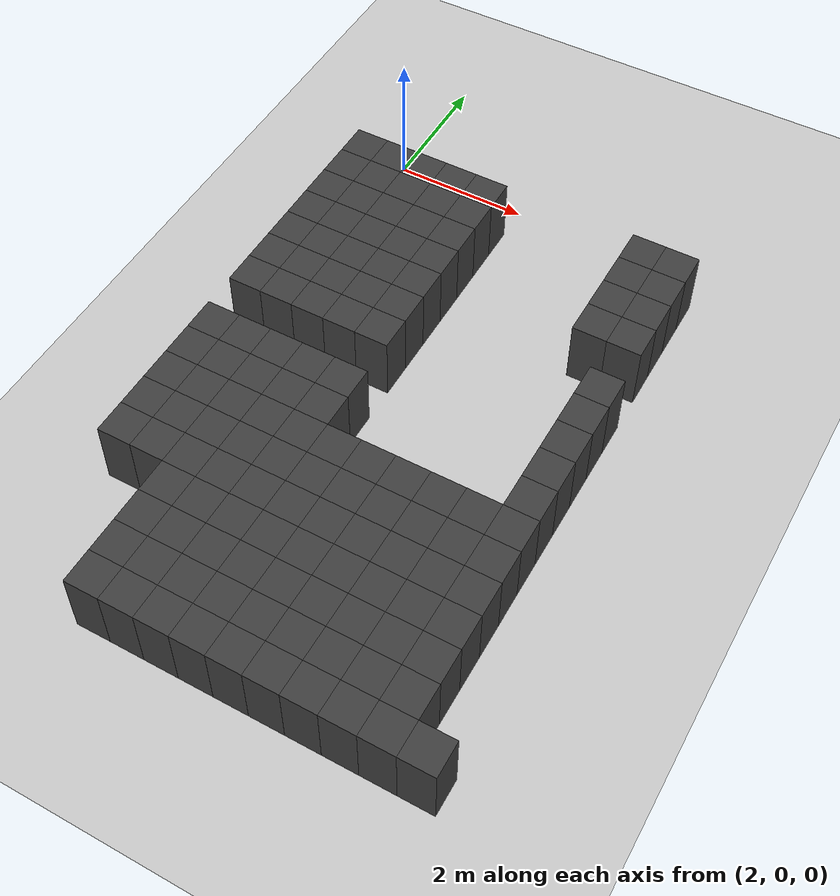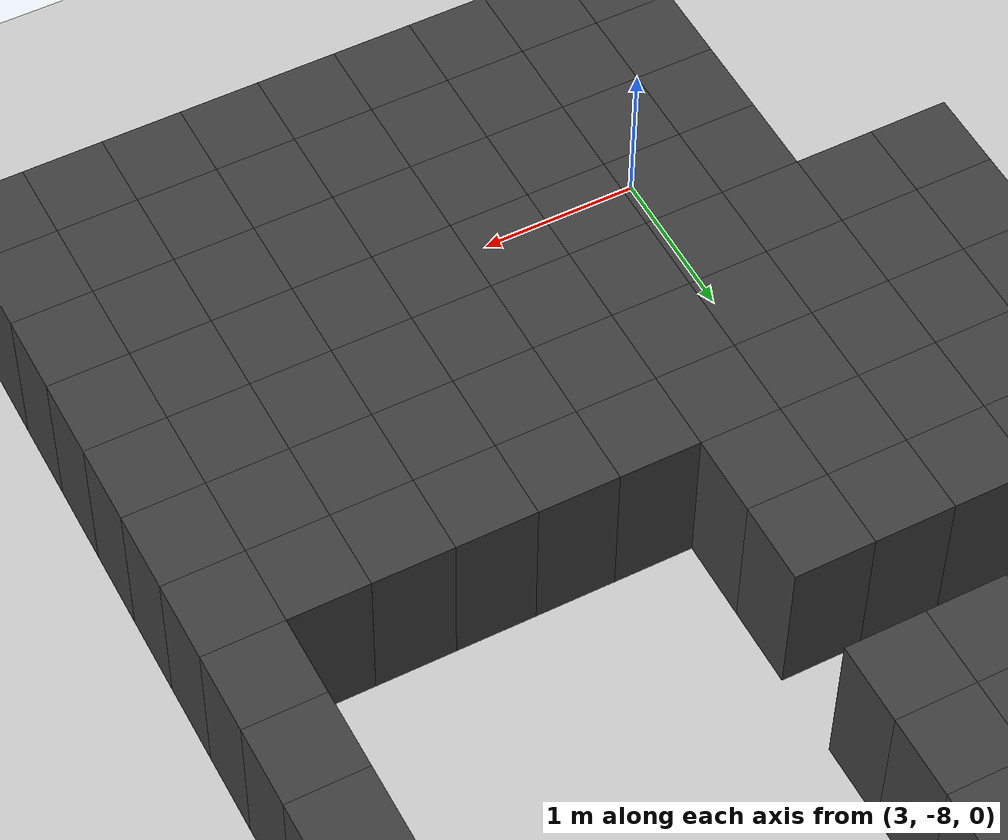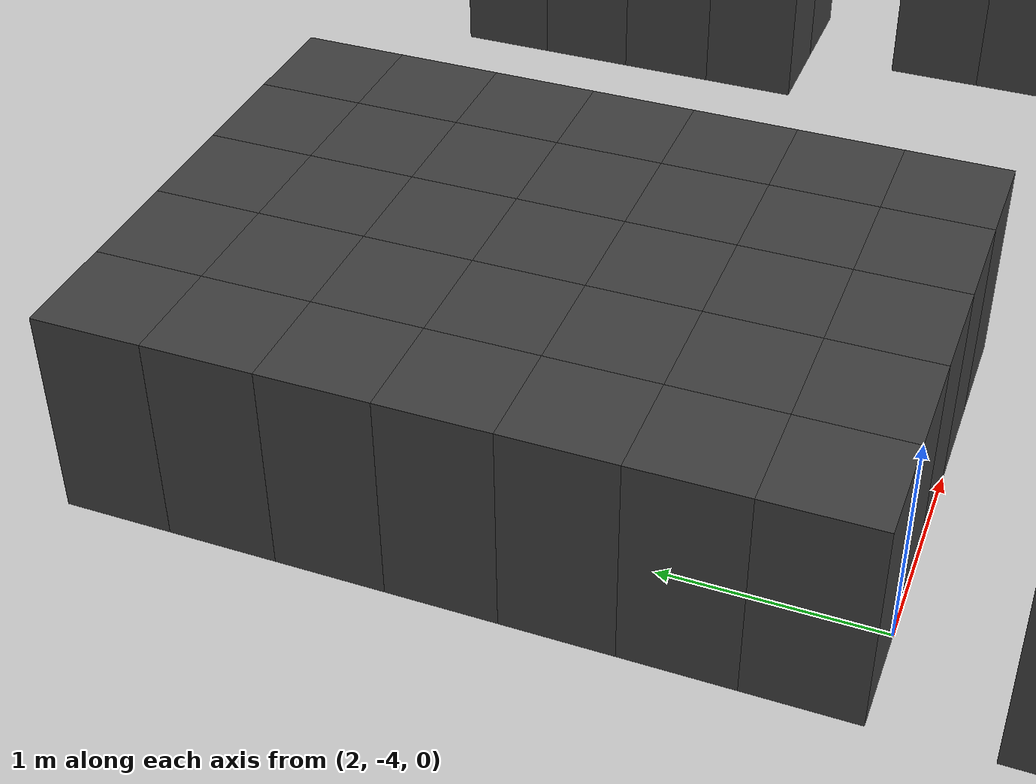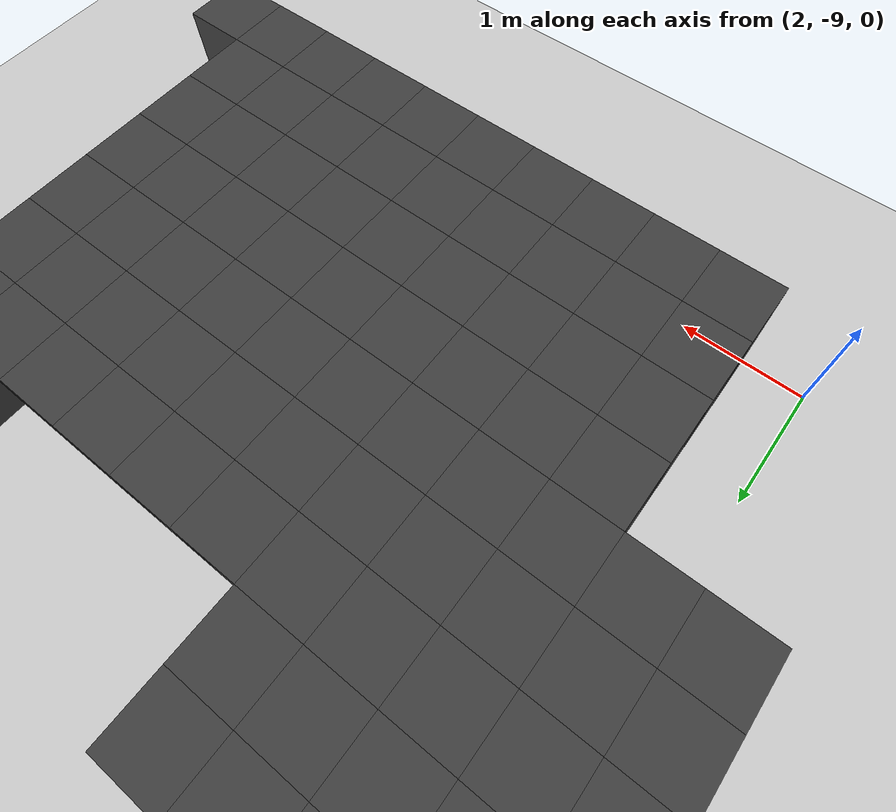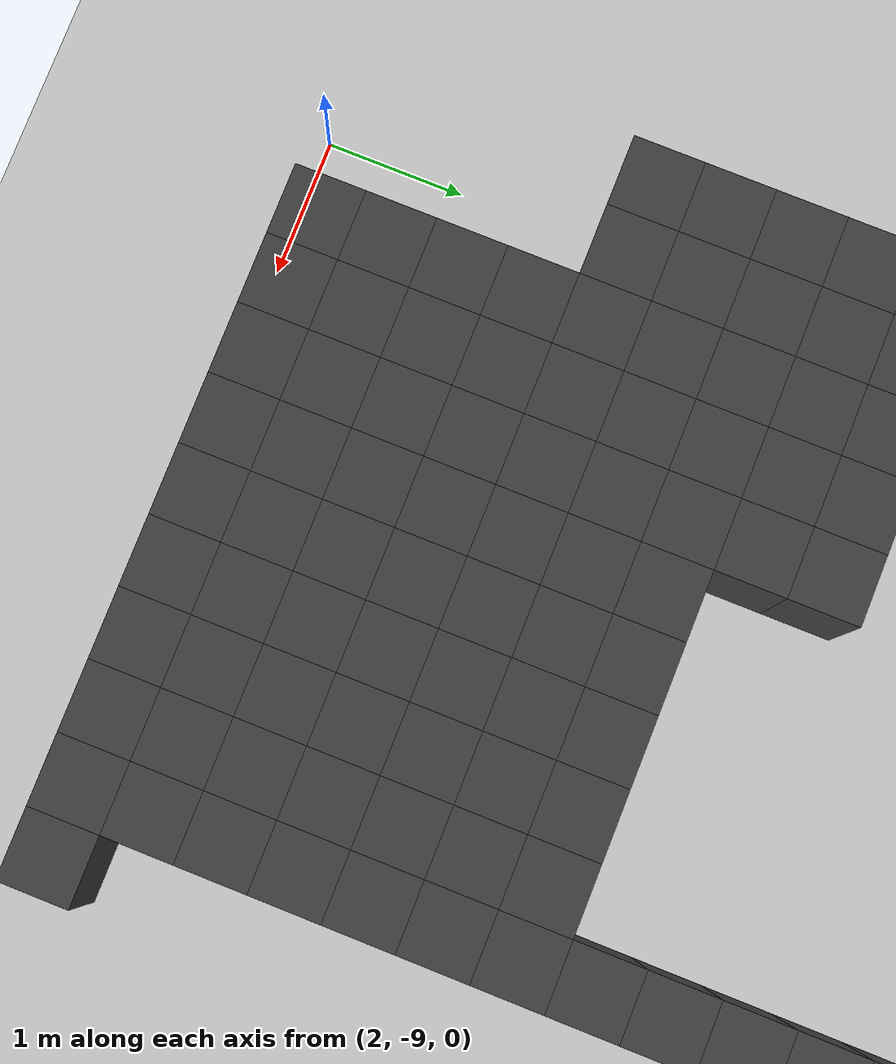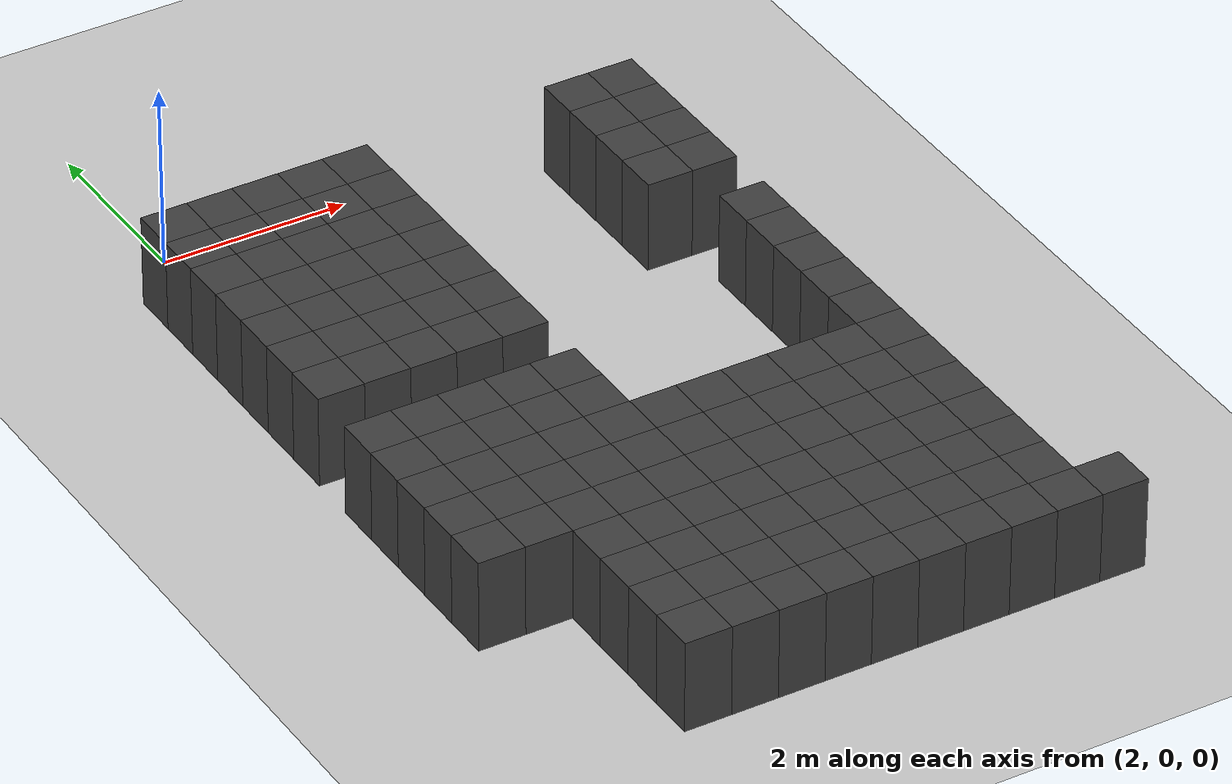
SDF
<sdf version="1.7">
 <world name="map_14494">
  <model name="ground_plane">
   <static>true</static>
   <link name="link">
    <collision name="collision">
     <geometry><plane><normal>0 0 1</normal><size>200 200</size></plane></geometry>
    </collision>
    <visual name="visual">
     <geometry><plane><normal>0 0 1</normal><size>200 200</size></plane></geometry>
     <material><ambient>0.8 0.8 0.8 1</ambient><diffuse>0.8 0.8 0.8 1</diffuse></material>
    </visual>
   </link>
  </model>
  <model name="maze_environment">
   <static>true</static>
   <link name="wall_971">
    <pose>1.750 -0.750 0.500 0 0 0</pose>
    <collision name="col"><geometry><box><size>0.5 0.5 1.0</size></box></geometry></collision>
    <visual name="vis">
     <geometry><box><size>0.5 0.5 1.0</size></box></geometry>
     <material><ambient>0.15 0.15 0.15 1</ambient><diffuse>0.25 0.25 0.25 1</diffuse></material>
    </visual>
   </link>
   <link name="wall_972">
    <pose>2.250 -0.750 0.500 0 0 0</pose>
    <collision name="col"><geometry><box><size>0.5 0.5 1.0</size></box></geometry></collision>
    <visual name="vis">
     <geometry><box><size>0.5 0.5 1.0</size></box></geometry>
     <material><ambient>0.15 0.15 0.15 1</ambient><diffuse>0.25 0.25 0.25 1</diffuse></material>
    </visual>
   </link>
   <link name="wall_973">
    <pose>2.750 -0.750 0.500 0 0 0</pose>
    <collision name="col"><geometry><box><size>0.5 0.5 1.0</size></box></geometry></collision>
    <visual name="vis">
     <geometry><box><size>0.5 0.5 1.0</size></box></geometry>
     <material><ambient>0.15 0.15 0.15 1</ambient><diffuse>0.25 0.25 0.25 1</diffuse></material>
    </visual>
   </link>
   <link name="wall_974">
    <pose>3.250 -0.750 0.500 0 0 0</pose>
    <collision name="col"><geometry><box><size>0.5 0.5 1.0</size></box></geometry></collision>
    <visual name="vis">
     <geometry><box><size>0.5 0.5 1.0</size></box></geometry>
     <material><ambient>0.15 0.15 0.15 1</ambient><diffuse>0.25 0.25 0.25 1</diffuse></material>
    </visual>
   </link>
   <link name="wall_975">
    <pose>3.750 -0.750 0.500 0 0 0</pose>
    <collision name="col"><geometry><box><size>0.5 0.5 1.0</size></box></geometry></collision>
    <visual name="vis">
     <geometry><box><size>0.5 0.5 1.0</size></box></geometry>
     <material><ambient>0.15 0.15 0.15 1</ambient><diffuse>0.25 0.25 0.25 1</diffuse></material>
    </visual>
   </link>
   <link name="wall_976">
    <pose>6.250 -0.750 0.500 0 0 0</pose>
    <collision name="col"><geometry><box><size>0.5 0.5 1.0</size></box></geometry></collision>
    <visual name="vis">
     <geometry><box><size>0.5 0.5 1.0</size></box></geometry>
     <material><ambient>0.15 0.15 0.15 1</ambient><diffuse>0.25 0.25 0.25 1</diffuse></material>
    </visual>
   </link>
   <link name="wall_977">
    <pose>6.750 -0.750 0.500 0 0 0</pose>
    <collision name="col"><geometry><box><size>0.5 0.5 1.0</size></box></geometry></collision>
    <visual name="vis">
     <geometry><box><size>0.5 0.5 1.0</size></box></geometry>
     <material><ambient>0.15 0.15 0.15 1</ambient><diffuse>0.25 0.25 0.25 1</diffuse></material>
    </visual>
   </link>
   <link name="wall_1007">
    <pose>1.750 -1.250 0.500 0 0 0</pose>
    <collision name="col"><geometry><box><size>0.5 0.5 1.0</size></box></geometry></collision>
    <visual name="vis">
     <geometry><box><size>0.5 0.5 1.0</size></box></geometry>
     <material><ambient>0.15 0.15 0.15 1</ambient><diffuse>0.25 0.25 0.25 1</diffuse></material>
    </visual>
   </link>
   <link name="wall_1008">
    <pose>2.250 -1.250 0.500 0 0 0</pose>
    <collision name="col"><geometry><box><size>0.5 0.5 1.0</size></box></geometry></collision>
    <visual name="vis">
     <geometry><box><size>0.5 0.5 1.0</size></box></geometry>
     <material><ambient>0.15 0.15 0.15 1</ambient><diffuse>0.25 0.25 0.25 1</diffuse></material>
    </visual>
   </link>
   <link name="wall_1009">
    <pose>2.750 -1.250 0.500 0 0 0</pose>
    <collision name="col"><geometry><box><size>0.5 0.5 1.0</size></box></geometry></collision>
    <visual name="vis">
     <geometry><box><size>0.5 0.5 1.0</size></box></geometry>
     <material><ambient>0.15 0.15 0.15 1</ambient><diffuse>0.25 0.25 0.25 1</diffuse></material>
    </visual>
   </link>
   <link name="wall_1010">
    <pose>3.250 -1.250 0.500 0 0 0</pose>
    <collision name="col"><geometry><box><size>0.5 0.5 1.0</size></box></geometry></collision>
    <visual name="vis">
     <geometry><box><size>0.5 0.5 1.0</size></box></geometry>
     <material><ambient>0.15 0.15 0.15 1</ambient><diffuse>0.25 0.25 0.25 1</diffuse></material>
    </visual>
   </link>
   <link name="wall_1011">
    <pose>3.750 -1.250 0.500 0 0 0</pose>
    <collision name="col"><geometry><box><size>0.5 0.5 1.0</size></box></geometry></collision>
    <visual name="vis">
     <geometry><box><size>0.5 0.5 1.0</size></box></geometry>
     <material><ambient>0.15 0.15 0.15 1</ambient><diffuse>0.25 0.25 0.25 1</diffuse></material>
    </visual>
   </link>
   <link name="wall_1012">
    <pose>6.250 -1.250 0.500 0 0 0</pose>
    <collision name="col"><geometry><box><size>0.5 0.5 1.0</size></box></geometry></collision>
    <visual name="vis">
     <geometry><box><size>0.5 0.5 1.0</size></box></geometry>
     <material><ambient>0.15 0.15 0.15 1</ambient><diffuse>0.25 0.25 0.25 1</diffuse></material>
    </visual>
   </link>
   <link name="wall_1013">
    <pose>6.750 -1.250 0.500 0 0 0</pose>
    <collision name="col"><geometry><box><size>0.5 0.5 1.0</size></box></geometry></collision>
    <visual name="vis">
     <geometry><box><size>0.5 0.5 1.0</size></box></geometry>
     <material><ambient>0.15 0.15 0.15 1</ambient><diffuse>0.25 0.25 0.25 1</diffuse></material>
    </visual>
   </link>
   <link name="wall_1039">
    <pose>1.750 -1.750 0.500 0 0 0</pose>
    <collision name="col"><geometry><box><size>0.5 0.5 1.0</size></box></geometry></collision>
    <visual name="vis">
     <geometry><box><size>0.5 0.5 1.0</size></box></geometry>
     <material><ambient>0.15 0.15 0.15 1</ambient><diffuse>0.25 0.25 0.25 1</diffuse></material>
    </visual>
   </link>
   <link name="wall_1040">
    <pose>2.250 -1.750 0.500 0 0 0</pose>
    <collision name="col"><geometry><box><size>0.5 0.5 1.0</size></box></geometry></collision>
    <visual name="vis">
     <geometry><box><size>0.5 0.5 1.0</size></box></geometry>
     <material><ambient>0.15 0.15 0.15 1</ambient><diffuse>0.25 0.25 0.25 1</diffuse></material>
    </visual>
   </link>
   <link name="wall_1041">
    <pose>2.750 -1.750 0.500 0 0 0</pose>
    <collision name="col"><geometry><box><size>0.5 0.5 1.0</size></box></geometry></collision>
    <visual name="vis">
     <geometry><box><size>0.5 0.5 1.0</size></box></geometry>
     <material><ambient>0.15 0.15 0.15 1</ambient><diffuse>0.25 0.25 0.25 1</diffuse></material>
    </visual>
   </link>
   <link name="wall_1042">
    <pose>3.250 -1.750 0.500 0 0 0</pose>
    <collision name="col"><geometry><box><size>0.5 0.5 1.0</size></box></geometry></collision>
    <visual name="vis">
     <geometry><box><size>0.5 0.5 1.0</size></box></geometry>
     <material><ambient>0.15 0.15 0.15 1</ambient><diffuse>0.25 0.25 0.25 1</diffuse></material>
    </visual>
   </link>
   <link name="wall_1043">
    <pose>3.750 -1.750 0.500 0 0 0</pose>
    <collision name="col"><geometry><box><size>0.5 0.5 1.0</size></box></geometry></collision>
    <visual name="vis">
     <geometry><box><size>0.5 0.5 1.0</size></box></geometry>
     <material><ambient>0.15 0.15 0.15 1</ambient><diffuse>0.25 0.25 0.25 1</diffuse></material>
    </visual>
   </link>
   <link name="wall_1044">
    <pose>6.250 -1.750 0.500 0 0 0</pose>
    <collision name="col"><geometry><box><size>0.5 0.5 1.0</size></box></geometry></collision>
    <visual name="vis">
     <geometry><box><size>0.5 0.5 1.0</size></box></geometry>
     <material><ambient>0.15 0.15 0.15 1</ambient><diffuse>0.25 0.25 0.25 1</diffuse></material>
    </visual>
   </link>
   <link name="wall_1045">
    <pose>6.750 -1.750 0.500 0 0 0</pose>
    <collision name="col"><geometry><box><size>0.5 0.5 1.0</size></box></geometry></collision>
    <visual name="vis">
     <geometry><box><size>0.5 0.5 1.0</size></box></geometry>
     <material><ambient>0.15 0.15 0.15 1</ambient><diffuse>0.25 0.25 0.25 1</diffuse></material>
    </visual>
   </link>
   <link name="wall_1071">
    <pose>1.750 -2.250 0.500 0 0 0</pose>
    <collision name="col"><geometry><box><size>0.5 0.5 1.0</size></box></geometry></collision>
    <visual name="vis">
     <geometry><box><size>0.5 0.5 1.0</size></box></geometry>
     <material><ambient>0.15 0.15 0.15 1</ambient><diffuse>0.25 0.25 0.25 1</diffuse></material>
    </visual>
   </link>
   <link name="wall_1072">
    <pose>2.250 -2.250 0.500 0 0 0</pose>
    <collision name="col"><geometry><box><size>0.5 0.5 1.0</size></box></geometry></collision>
    <visual name="vis">
     <geometry><box><size>0.5 0.5 1.0</size></box></geometry>
     <material><ambient>0.15 0.15 0.15 1</ambient><diffuse>0.25 0.25 0.25 1</diffuse></material>
    </visual>
   </link>
   <link name="wall_1073">
    <pose>2.750 -2.250 0.500 0 0 0</pose>
    <collision name="col"><geometry><box><size>0.5 0.5 1.0</size></box></geometry></collision>
    <visual name="vis">
     <geometry><box><size>0.5 0.5 1.0</size></box></geometry>
     <material><ambient>0.15 0.15 0.15 1</ambient><diffuse>0.25 0.25 0.25 1</diffuse></material>
    </visual>
   </link>
   <link name="wall_1074">
    <pose>3.250 -2.250 0.500 0 0 0</pose>
    <collision name="col"><geometry><box><size>0.5 0.5 1.0</size></box></geometry></collision>
    <visual name="vis">
     <geometry><box><size>0.5 0.5 1.0</size></box></geometry>
     <material><ambient>0.15 0.15 0.15 1</ambient><diffuse>0.25 0.25 0.25 1</diffuse></material>
    </visual>
   </link>
   <link name="wall_1075">
    <pose>3.750 -2.250 0.500 0 0 0</pose>
    <collision name="col"><geometry><box><size>0.5 0.5 1.0</size></box></geometry></collision>
    <visual name="vis">
     <geometry><box><size>0.5 0.5 1.0</size></box></geometry>
     <material><ambient>0.15 0.15 0.15 1</ambient><diffuse>0.25 0.25 0.25 1</diffuse></material>
    </visual>
   </link>
   <link name="wall_1076">
    <pose>6.250 -2.250 0.500 0 0 0</pose>
    <collision name="col"><geometry><box><size>0.5 0.5 1.0</size></box></geometry></collision>
    <visual name="vis">
     <geometry><box><size>0.5 0.5 1.0</size></box></geometry>
     <material><ambient>0.15 0.15 0.15 1</ambient><diffuse>0.25 0.25 0.25 1</diffuse></material>
    </visual>
   </link>
   <link name="wall_1077">
    <pose>6.750 -2.250 0.500 0 0 0</pose>
    <collision name="col"><geometry><box><size>0.5 0.5 1.0</size></box></geometry></collision>
    <visual name="vis">
     <geometry><box><size>0.5 0.5 1.0</size></box></geometry>
     <material><ambient>0.15 0.15 0.15 1</ambient><diffuse>0.25 0.25 0.25 1</diffuse></material>
    </visual>
   </link>
   <link name="wall_1099">
    <pose>1.750 -2.750 0.500 0 0 0</pose>
    <collision name="col"><geometry><box><size>0.5 0.5 1.0</size></box></geometry></collision>
    <visual name="vis">
     <geometry><box><size>0.5 0.5 1.0</size></box></geometry>
     <material><ambient>0.15 0.15 0.15 1</ambient><diffuse>0.25 0.25 0.25 1</diffuse></material>
    </visual>
   </link>
   <link name="wall_1100">
    <pose>2.250 -2.750 0.500 0 0 0</pose>
    <collision name="col"><geometry><box><size>0.5 0.5 1.0</size></box></geometry></collision>
    <visual name="vis">
     <geometry><box><size>0.5 0.5 1.0</size></box></geometry>
     <material><ambient>0.15 0.15 0.15 1</ambient><diffuse>0.25 0.25 0.25 1</diffuse></material>
    </visual>
   </link>
   <link name="wall_1101">
    <pose>2.750 -2.750 0.500 0 0 0</pose>
    <collision name="col"><geometry><box><size>0.5 0.5 1.0</size></box></geometry></collision>
    <visual name="vis">
     <geometry><box><size>0.5 0.5 1.0</size></box></geometry>
     <material><ambient>0.15 0.15 0.15 1</ambient><diffuse>0.25 0.25 0.25 1</diffuse></material>
    </visual>
   </link>
   <link name="wall_1102">
    <pose>3.250 -2.750 0.500 0 0 0</pose>
    <collision name="col"><geometry><box><size>0.5 0.5 1.0</size></box></geometry></collision>
    <visual name="vis">
     <geometry><box><size>0.5 0.5 1.0</size></box></geometry>
     <material><ambient>0.15 0.15 0.15 1</ambient><diffuse>0.25 0.25 0.25 1</diffuse></material>
    </visual>
   </link>
   <link name="wall_1103">
    <pose>3.750 -2.750 0.500 0 0 0</pose>
    <collision name="col"><geometry><box><size>0.5 0.5 1.0</size></box></geometry></collision>
    <visual name="vis">
     <geometry><box><size>0.5 0.5 1.0</size></box></geometry>
     <material><ambient>0.15 0.15 0.15 1</ambient><diffuse>0.25 0.25 0.25 1</diffuse></material>
    </visual>
   </link>
   <link name="wall_1125">
    <pose>1.750 -3.250 0.500 0 0 0</pose>
    <collision name="col"><geometry><box><size>0.5 0.5 1.0</size></box></geometry></collision>
    <visual name="vis">
     <geometry><box><size>0.5 0.5 1.0</size></box></geometry>
     <material><ambient>0.15 0.15 0.15 1</ambient><diffuse>0.25 0.25 0.25 1</diffuse></material>
    </visual>
   </link>
   <link name="wall_1126">
    <pose>2.250 -3.250 0.500 0 0 0</pose>
    <collision name="col"><geometry><box><size>0.5 0.5 1.0</size></box></geometry></collision>
    <visual name="vis">
     <geometry><box><size>0.5 0.5 1.0</size></box></geometry>
     <material><ambient>0.15 0.15 0.15 1</ambient><diffuse>0.25 0.25 0.25 1</diffuse></material>
    </visual>
   </link>
   <link name="wall_1127">
    <pose>2.750 -3.250 0.500 0 0 0</pose>
    <collision name="col"><geometry><box><size>0.5 0.5 1.0</size></box></geometry></collision>
    <visual name="vis">
     <geometry><box><size>0.5 0.5 1.0</size></box></geometry>
     <material><ambient>0.15 0.15 0.15 1</ambient><diffuse>0.25 0.25 0.25 1</diffuse></material>
    </visual>
   </link>
   <link name="wall_1128">
    <pose>3.250 -3.250 0.500 0 0 0</pose>
    <collision name="col"><geometry><box><size>0.5 0.5 1.0</size></box></geometry></collision>
    <visual name="vis">
     <geometry><box><size>0.5 0.5 1.0</size></box></geometry>
     <material><ambient>0.15 0.15 0.15 1</ambient><diffuse>0.25 0.25 0.25 1</diffuse></material>
    </visual>
   </link>
   <link name="wall_1129">
    <pose>3.750 -3.250 0.500 0 0 0</pose>
    <collision name="col"><geometry><box><size>0.5 0.5 1.0</size></box></geometry></collision>
    <visual name="vis">
     <geometry><box><size>0.5 0.5 1.0</size></box></geometry>
     <material><ambient>0.15 0.15 0.15 1</ambient><diffuse>0.25 0.25 0.25 1</diffuse></material>
    </visual>
   </link>
   <link name="wall_1130">
    <pose>6.750 -3.250 0.500 0 0 0</pose>
    <collision name="col"><geometry><box><size>0.5 0.5 1.0</size></box></geometry></collision>
    <visual name="vis">
     <geometry><box><size>0.5 0.5 1.0</size></box></geometry>
     <material><ambient>0.15 0.15 0.15 1</ambient><diffuse>0.25 0.25 0.25 1</diffuse></material>
    </visual>
   </link>
   <link name="wall_1152">
    <pose>1.750 -3.750 0.500 0 0 0</pose>
    <collision name="col"><geometry><box><size>0.5 0.5 1.0</size></box></geometry></collision>
    <visual name="vis">
     <geometry><box><size>0.5 0.5 1.0</size></box></geometry>
     <material><ambient>0.15 0.15 0.15 1</ambient><diffuse>0.25 0.25 0.25 1</diffuse></material>
    </visual>
   </link>
   <link name="wall_1153">
    <pose>2.250 -3.750 0.500 0 0 0</pose>
    <collision name="col"><geometry><box><size>0.5 0.5 1.0</size></box></geometry></collision>
    <visual name="vis">
     <geometry><box><size>0.5 0.5 1.0</size></box></geometry>
     <material><ambient>0.15 0.15 0.15 1</ambient><diffuse>0.25 0.25 0.25 1</diffuse></material>
    </visual>
   </link>
   <link name="wall_1154">
    <pose>2.750 -3.750 0.500 0 0 0</pose>
    <collision name="col"><geometry><box><size>0.5 0.5 1.0</size></box></geometry></collision>
    <visual name="vis">
     <geometry><box><size>0.5 0.5 1.0</size></box></geometry>
     <material><ambient>0.15 0.15 0.15 1</ambient><diffuse>0.25 0.25 0.25 1</diffuse></material>
    </visual>
   </link>
   <link name="wall_1155">
    <pose>3.250 -3.750 0.500 0 0 0</pose>
    <collision name="col"><geometry><box><size>0.5 0.5 1.0</size></box></geometry></collision>
    <visual name="vis">
     <geometry><box><size>0.5 0.5 1.0</size></box></geometry>
     <material><ambient>0.15 0.15 0.15 1</ambient><diffuse>0.25 0.25 0.25 1</diffuse></material>
    </visual>
   </link>
   <link name="wall_1156">
    <pose>3.750 -3.750 0.500 0 0 0</pose>
    <collision name="col"><geometry><box><size>0.5 0.5 1.0</size></box></geometry></collision>
    <visual name="vis">
     <geometry><box><size>0.5 0.5 1.0</size></box></geometry>
     <material><ambient>0.15 0.15 0.15 1</ambient><diffuse>0.25 0.25 0.25 1</diffuse></material>
    </visual>
   </link>
   <link name="wall_1157">
    <pose>6.750 -3.750 0.500 0 0 0</pose>
    <collision name="col"><geometry><box><size>0.5 0.5 1.0</size></box></geometry></collision>
    <visual name="vis">
     <geometry><box><size>0.5 0.5 1.0</size></box></geometry>
     <material><ambient>0.15 0.15 0.15 1</ambient><diffuse>0.25 0.25 0.25 1</diffuse></material>
    </visual>
   </link>
   <link name="wall_1177">
    <pose>6.750 -4.250 0.500 0 0 0</pose>
    <collision name="col"><geometry><box><size>0.5 0.5 1.0</size></box></geometry></collision>
    <visual name="vis">
     <geometry><box><size>0.5 0.5 1.0</size></box></geometry>
     <material><ambient>0.15 0.15 0.15 1</ambient><diffuse>0.25 0.25 0.25 1</diffuse></material>
    </visual>
   </link>
   <link name="wall_1209">
    <pose>1.750 -4.750 0.500 0 0 0</pose>
    <collision name="col"><geometry><box><size>0.5 0.5 1.0</size></box></geometry></collision>
    <visual name="vis">
     <geometry><box><size>0.5 0.5 1.0</size></box></geometry>
     <material><ambient>0.15 0.15 0.15 1</ambient><diffuse>0.25 0.25 0.25 1</diffuse></material>
    </visual>
   </link>
   <link name="wall_1210">
    <pose>2.250 -4.750 0.500 0 0 0</pose>
    <collision name="col"><geometry><box><size>0.5 0.5 1.0</size></box></geometry></collision>
    <visual name="vis">
     <geometry><box><size>0.5 0.5 1.0</size></box></geometry>
     <material><ambient>0.15 0.15 0.15 1</ambient><diffuse>0.25 0.25 0.25 1</diffuse></material>
    </visual>
   </link>
   <link name="wall_1211">
    <pose>2.750 -4.750 0.500 0 0 0</pose>
    <collision name="col"><geometry><box><size>0.5 0.5 1.0</size></box></geometry></collision>
    <visual name="vis">
     <geometry><box><size>0.5 0.5 1.0</size></box></geometry>
     <material><ambient>0.15 0.15 0.15 1</ambient><diffuse>0.25 0.25 0.25 1</diffuse></material>
    </visual>
   </link>
   <link name="wall_1212">
    <pose>3.250 -4.750 0.500 0 0 0</pose>
    <collision name="col"><geometry><box><size>0.5 0.5 1.0</size></box></geometry></collision>
    <visual name="vis">
     <geometry><box><size>0.5 0.5 1.0</size></box></geometry>
     <material><ambient>0.15 0.15 0.15 1</ambient><diffuse>0.25 0.25 0.25 1</diffuse></material>
    </visual>
   </link>
   <link name="wall_1213">
    <pose>3.750 -4.750 0.500 0 0 0</pose>
    <collision name="col"><geometry><box><size>0.5 0.5 1.0</size></box></geometry></collision>
    <visual name="vis">
     <geometry><box><size>0.5 0.5 1.0</size></box></geometry>
     <material><ambient>0.15 0.15 0.15 1</ambient><diffuse>0.25 0.25 0.25 1</diffuse></material>
    </visual>
   </link>
   <link name="wall_1214">
    <pose>6.750 -4.750 0.500 0 0 0</pose>
    <collision name="col"><geometry><box><size>0.5 0.5 1.0</size></box></geometry></collision>
    <visual name="vis">
     <geometry><box><size>0.5 0.5 1.0</size></box></geometry>
     <material><ambient>0.15 0.15 0.15 1</ambient><diffuse>0.25 0.25 0.25 1</diffuse></material>
    </visual>
   </link>
   <link name="wall_1246">
    <pose>1.750 -5.250 0.500 0 0 0</pose>
    <collision name="col"><geometry><box><size>0.5 0.5 1.0</size></box></geometry></collision>
    <visual name="vis">
     <geometry><box><size>0.5 0.5 1.0</size></box></geometry>
     <material><ambient>0.15 0.15 0.15 1</ambient><diffuse>0.25 0.25 0.25 1</diffuse></material>
    </visual>
   </link>
   <link name="wall_1247">
    <pose>2.250 -5.250 0.500 0 0 0</pose>
    <collision name="col"><geometry><box><size>0.5 0.5 1.0</size></box></geometry></collision>
    <visual name="vis">
     <geometry><box><size>0.5 0.5 1.0</size></box></geometry>
     <material><ambient>0.15 0.15 0.15 1</ambient><diffuse>0.25 0.25 0.25 1</diffuse></material>
    </visual>
   </link>
   <link name="wall_1248">
    <pose>2.750 -5.250 0.500 0 0 0</pose>
    <collision name="col"><geometry><box><size>0.5 0.5 1.0</size></box></geometry></collision>
    <visual name="vis">
     <geometry><box><size>0.5 0.5 1.0</size></box></geometry>
     <material><ambient>0.15 0.15 0.15 1</ambient><diffuse>0.25 0.25 0.25 1</diffuse></material>
    </visual>
   </link>
   <link name="wall_1249">
    <pose>3.250 -5.250 0.500 0 0 0</pose>
    <collision name="col"><geometry><box><size>0.5 0.5 1.0</size></box></geometry></collision>
    <visual name="vis">
     <geometry><box><size>0.5 0.5 1.0</size></box></geometry>
     <material><ambient>0.15 0.15 0.15 1</ambient><diffuse>0.25 0.25 0.25 1</diffuse></material>
    </visual>
   </link>
   <link name="wall_1250">
    <pose>3.750 -5.250 0.500 0 0 0</pose>
    <collision name="col"><geometry><box><size>0.5 0.5 1.0</size></box></geometry></collision>
    <visual name="vis">
     <geometry><box><size>0.5 0.5 1.0</size></box></geometry>
     <material><ambient>0.15 0.15 0.15 1</ambient><diffuse>0.25 0.25 0.25 1</diffuse></material>
    </visual>
   </link>
   <link name="wall_1251">
    <pose>6.750 -5.250 0.500 0 0 0</pose>
    <collision name="col"><geometry><box><size>0.5 0.5 1.0</size></box></geometry></collision>
    <visual name="vis">
     <geometry><box><size>0.5 0.5 1.0</size></box></geometry>
     <material><ambient>0.15 0.15 0.15 1</ambient><diffuse>0.25 0.25 0.25 1</diffuse></material>
    </visual>
   </link>
   <link name="wall_1288">
    <pose>1.750 -5.750 0.500 0 0 0</pose>
    <collision name="col"><geometry><box><size>0.5 0.5 1.0</size></box></geometry></collision>
    <visual name="vis">
     <geometry><box><size>0.5 0.5 1.0</size></box></geometry>
     <material><ambient>0.15 0.15 0.15 1</ambient><diffuse>0.25 0.25 0.25 1</diffuse></material>
    </visual>
   </link>
   <link name="wall_1289">
    <pose>2.250 -5.750 0.500 0 0 0</pose>
    <collision name="col"><geometry><box><size>0.5 0.5 1.0</size></box></geometry></collision>
    <visual name="vis">
     <geometry><box><size>0.5 0.5 1.0</size></box></geometry>
     <material><ambient>0.15 0.15 0.15 1</ambient><diffuse>0.25 0.25 0.25 1</diffuse></material>
    </visual>
   </link>
   <link name="wall_1290">
    <pose>2.750 -5.750 0.500 0 0 0</pose>
    <collision name="col"><geometry><box><size>0.5 0.5 1.0</size></box></geometry></collision>
    <visual name="vis">
     <geometry><box><size>0.5 0.5 1.0</size></box></geometry>
     <material><ambient>0.15 0.15 0.15 1</ambient><diffuse>0.25 0.25 0.25 1</diffuse></material>
    </visual>
   </link>
   <link name="wall_1291">
    <pose>3.250 -5.750 0.500 0 0 0</pose>
    <collision name="col"><geometry><box><size>0.5 0.5 1.0</size></box></geometry></collision>
    <visual name="vis">
     <geometry><box><size>0.5 0.5 1.0</size></box></geometry>
     <material><ambient>0.15 0.15 0.15 1</ambient><diffuse>0.25 0.25 0.25 1</diffuse></material>
    </visual>
   </link>
   <link name="wall_1292">
    <pose>3.750 -5.750 0.500 0 0 0</pose>
    <collision name="col"><geometry><box><size>0.5 0.5 1.0</size></box></geometry></collision>
    <visual name="vis">
     <geometry><box><size>0.5 0.5 1.0</size></box></geometry>
     <material><ambient>0.15 0.15 0.15 1</ambient><diffuse>0.25 0.25 0.25 1</diffuse></material>
    </visual>
   </link>
   <link name="wall_1293">
    <pose>4.250 -5.750 0.500 0 0 0</pose>
    <collision name="col"><geometry><box><size>0.5 0.5 1.0</size></box></geometry></collision>
    <visual name="vis">
     <geometry><box><size>0.5 0.5 1.0</size></box></geometry>
     <material><ambient>0.15 0.15 0.15 1</ambient><diffuse>0.25 0.25 0.25 1</diffuse></material>
    </visual>
   </link>
   <link name="wall_1294">
    <pose>4.750 -5.750 0.500 0 0 0</pose>
    <collision name="col"><geometry><box><size>0.5 0.5 1.0</size></box></geometry></collision>
    <visual name="vis">
     <geometry><box><size>0.5 0.5 1.0</size></box></geometry>
     <material><ambient>0.15 0.15 0.15 1</ambient><diffuse>0.25 0.25 0.25 1</diffuse></material>
    </visual>
   </link>
   <link name="wall_1295">
    <pose>5.250 -5.750 0.500 0 0 0</pose>
    <collision name="col"><geometry><box><size>0.5 0.5 1.0</size></box></geometry></collision>
    <visual name="vis">
     <geometry><box><size>0.5 0.5 1.0</size></box></geometry>
     <material><ambient>0.15 0.15 0.15 1</ambient><diffuse>0.25 0.25 0.25 1</diffuse></material>
    </visual>
   </link>
   <link name="wall_1296">
    <pose>5.750 -5.750 0.500 0 0 0</pose>
    <collision name="col"><geometry><box><size>0.5 0.5 1.0</size></box></geometry></collision>
    <visual name="vis">
     <geometry><box><size>0.5 0.5 1.0</size></box></geometry>
     <material><ambient>0.15 0.15 0.15 1</ambient><diffuse>0.25 0.25 0.25 1</diffuse></material>
    </visual>
   </link>
   <link name="wall_1297">
    <pose>6.250 -5.750 0.500 0 0 0</pose>
    <collision name="col"><geometry><box><size>0.5 0.5 1.0</size></box></geometry></collision>
    <visual name="vis">
     <geometry><box><size>0.5 0.5 1.0</size></box></geometry>
     <material><ambient>0.15 0.15 0.15 1</ambient><diffuse>0.25 0.25 0.25 1</diffuse></material>
    </visual>
   </link>
   <link name="wall_1298">
    <pose>6.750 -5.750 0.500 0 0 0</pose>
    <collision name="col"><geometry><box><size>0.5 0.5 1.0</size></box></geometry></collision>
    <visual name="vis">
     <geometry><box><size>0.5 0.5 1.0</size></box></geometry>
     <material><ambient>0.15 0.15 0.15 1</ambient><diffuse>0.25 0.25 0.25 1</diffuse></material>
    </visual>
   </link>
   <link name="wall_1335">
    <pose>1.750 -6.250 0.500 0 0 0</pose>
    <collision name="col"><geometry><box><size>0.5 0.5 1.0</size></box></geometry></collision>
    <visual name="vis">
     <geometry><box><size>0.5 0.5 1.0</size></box></geometry>
     <material><ambient>0.15 0.15 0.15 1</ambient><diffuse>0.25 0.25 0.25 1</diffuse></material>
    </visual>
   </link>
   <link name="wall_1336">
    <pose>2.250 -6.250 0.500 0 0 0</pose>
    <collision name="col"><geometry><box><size>0.5 0.5 1.0</size></box></geometry></collision>
    <visual name="vis">
     <geometry><box><size>0.5 0.5 1.0</size></box></geometry>
     <material><ambient>0.15 0.15 0.15 1</ambient><diffuse>0.25 0.25 0.25 1</diffuse></material>
    </visual>
   </link>
   <link name="wall_1337">
    <pose>2.750 -6.250 0.500 0 0 0</pose>
    <collision name="col"><geometry><box><size>0.5 0.5 1.0</size></box></geometry></collision>
    <visual name="vis">
     <geometry><box><size>0.5 0.5 1.0</size></box></geometry>
     <material><ambient>0.15 0.15 0.15 1</ambient><diffuse>0.25 0.25 0.25 1</diffuse></material>
    </visual>
   </link>
   <link name="wall_1338">
    <pose>3.250 -6.250 0.500 0 0 0</pose>
    <collision name="col"><geometry><box><size>0.5 0.5 1.0</size></box></geometry></collision>
    <visual name="vis">
     <geometry><box><size>0.5 0.5 1.0</size></box></geometry>
     <material><ambient>0.15 0.15 0.15 1</ambient><diffuse>0.25 0.25 0.25 1</diffuse></material>
    </visual>
   </link>
   <link name="wall_1339">
    <pose>3.750 -6.250 0.500 0 0 0</pose>
    <collision name="col"><geometry><box><size>0.5 0.5 1.0</size></box></geometry></collision>
    <visual name="vis">
     <geometry><box><size>0.5 0.5 1.0</size></box></geometry>
     <material><ambient>0.15 0.15 0.15 1</ambient><diffuse>0.25 0.25 0.25 1</diffuse></material>
    </visual>
   </link>
   <link name="wall_1340">
    <pose>4.250 -6.250 0.500 0 0 0</pose>
    <collision name="col"><geometry><box><size>0.5 0.5 1.0</size></box></geometry></collision>
    <visual name="vis">
     <geometry><box><size>0.5 0.5 1.0</size></box></geometry>
     <material><ambient>0.15 0.15 0.15 1</ambient><diffuse>0.25 0.25 0.25 1</diffuse></material>
    </visual>
   </link>
   <link name="wall_1341">
    <pose>4.750 -6.250 0.500 0 0 0</pose>
    <collision name="col"><geometry><box><size>0.5 0.5 1.0</size></box></geometry></collision>
    <visual name="vis">
     <geometry><box><size>0.5 0.5 1.0</size></box></geometry>
     <material><ambient>0.15 0.15 0.15 1</ambient><diffuse>0.25 0.25 0.25 1</diffuse></material>
    </visual>
   </link>
   <link name="wall_1342">
    <pose>5.250 -6.250 0.500 0 0 0</pose>
    <collision name="col"><geometry><box><size>0.5 0.5 1.0</size></box></geometry></collision>
    <visual name="vis">
     <geometry><box><size>0.5 0.5 1.0</size></box></geometry>
     <material><ambient>0.15 0.15 0.15 1</ambient><diffuse>0.25 0.25 0.25 1</diffuse></material>
    </visual>
   </link>
   <link name="wall_1343">
    <pose>5.750 -6.250 0.500 0 0 0</pose>
    <collision name="col"><geometry><box><size>0.5 0.5 1.0</size></box></geometry></collision>
    <visual name="vis">
     <geometry><box><size>0.5 0.5 1.0</size></box></geometry>
     <material><ambient>0.15 0.15 0.15 1</ambient><diffuse>0.25 0.25 0.25 1</diffuse></material>
    </visual>
   </link>
   <link name="wall_1344">
    <pose>6.250 -6.250 0.500 0 0 0</pose>
    <collision name="col"><geometry><box><size>0.5 0.5 1.0</size></box></geometry></collision>
    <visual name="vis">
     <geometry><box><size>0.5 0.5 1.0</size></box></geometry>
     <material><ambient>0.15 0.15 0.15 1</ambient><diffuse>0.25 0.25 0.25 1</diffuse></material>
    </visual>
   </link>
   <link name="wall_1345">
    <pose>6.750 -6.250 0.500 0 0 0</pose>
    <collision name="col"><geometry><box><size>0.5 0.5 1.0</size></box></geometry></collision>
    <visual name="vis">
     <geometry><box><size>0.5 0.5 1.0</size></box></geometry>
     <material><ambient>0.15 0.15 0.15 1</ambient><diffuse>0.25 0.25 0.25 1</diffuse></material>
    </visual>
   </link>
   <link name="wall_1382">
    <pose>1.750 -6.750 0.500 0 0 0</pose>
    <collision name="col"><geometry><box><size>0.5 0.5 1.0</size></box></geometry></collision>
    <visual name="vis">
     <geometry><box><size>0.5 0.5 1.0</size></box></geometry>
     <material><ambient>0.15 0.15 0.15 1</ambient><diffuse>0.25 0.25 0.25 1</diffuse></material>
    </visual>
   </link>
   <link name="wall_1383">
    <pose>2.250 -6.750 0.500 0 0 0</pose>
    <collision name="col"><geometry><box><size>0.5 0.5 1.0</size></box></geometry></collision>
    <visual name="vis">
     <geometry><box><size>0.5 0.5 1.0</size></box></geometry>
     <material><ambient>0.15 0.15 0.15 1</ambient><diffuse>0.25 0.25 0.25 1</diffuse></material>
    </visual>
   </link>
   <link name="wall_1384">
    <pose>2.750 -6.750 0.500 0 0 0</pose>
    <collision name="col"><geometry><box><size>0.5 0.5 1.0</size></box></geometry></collision>
    <visual name="vis">
     <geometry><box><size>0.5 0.5 1.0</size></box></geometry>
     <material><ambient>0.15 0.15 0.15 1</ambient><diffuse>0.25 0.25 0.25 1</diffuse></material>
    </visual>
   </link>
   <link name="wall_1385">
    <pose>3.250 -6.750 0.500 0 0 0</pose>
    <collision name="col"><geometry><box><size>0.5 0.5 1.0</size></box></geometry></collision>
    <visual name="vis">
     <geometry><box><size>0.5 0.5 1.0</size></box></geometry>
     <material><ambient>0.15 0.15 0.15 1</ambient><diffuse>0.25 0.25 0.25 1</diffuse></material>
    </visual>
   </link>
   <link name="wall_1386">
    <pose>3.750 -6.750 0.500 0 0 0</pose>
    <collision name="col"><geometry><box><size>0.5 0.5 1.0</size></box></geometry></collision>
    <visual name="vis">
     <geometry><box><size>0.5 0.5 1.0</size></box></geometry>
     <material><ambient>0.15 0.15 0.15 1</ambient><diffuse>0.25 0.25 0.25 1</diffuse></material>
    </visual>
   </link>
   <link name="wall_1387">
    <pose>4.250 -6.750 0.500 0 0 0</pose>
    <collision name="col"><geometry><box><size>0.5 0.5 1.0</size></box></geometry></collision>
    <visual name="vis">
     <geometry><box><size>0.5 0.5 1.0</size></box></geometry>
     <material><ambient>0.15 0.15 0.15 1</ambient><diffuse>0.25 0.25 0.25 1</diffuse></material>
    </visual>
   </link>
   <link name="wall_1388">
    <pose>4.750 -6.750 0.500 0 0 0</pose>
    <collision name="col"><geometry><box><size>0.5 0.5 1.0</size></box></geometry></collision>
    <visual name="vis">
     <geometry><box><size>0.5 0.5 1.0</size></box></geometry>
     <material><ambient>0.15 0.15 0.15 1</ambient><diffuse>0.25 0.25 0.25 1</diffuse></material>
    </visual>
   </link>
   <link name="wall_1389">
    <pose>5.250 -6.750 0.500 0 0 0</pose>
    <collision name="col"><geometry><box><size>0.5 0.5 1.0</size></box></geometry></collision>
    <visual name="vis">
     <geometry><box><size>0.5 0.5 1.0</size></box></geometry>
     <material><ambient>0.15 0.15 0.15 1</ambient><diffuse>0.25 0.25 0.25 1</diffuse></material>
    </visual>
   </link>
   <link name="wall_1390">
    <pose>5.750 -6.750 0.500 0 0 0</pose>
    <collision name="col"><geometry><box><size>0.5 0.5 1.0</size></box></geometry></collision>
    <visual name="vis">
     <geometry><box><size>0.5 0.5 1.0</size></box></geometry>
     <material><ambient>0.15 0.15 0.15 1</ambient><diffuse>0.25 0.25 0.25 1</diffuse></material>
    </visual>
   </link>
   <link name="wall_1391">
    <pose>6.250 -6.750 0.500 0 0 0</pose>
    <collision name="col"><geometry><box><size>0.5 0.5 1.0</size></box></geometry></collision>
    <visual name="vis">
     <geometry><box><size>0.5 0.5 1.0</size></box></geometry>
     <material><ambient>0.15 0.15 0.15 1</ambient><diffuse>0.25 0.25 0.25 1</diffuse></material>
    </visual>
   </link>
   <link name="wall_1392">
    <pose>6.750 -6.750 0.500 0 0 0</pose>
    <collision name="col"><geometry><box><size>0.5 0.5 1.0</size></box></geometry></collision>
    <visual name="vis">
     <geometry><box><size>0.5 0.5 1.0</size></box></geometry>
     <material><ambient>0.15 0.15 0.15 1</ambient><diffuse>0.25 0.25 0.25 1</diffuse></material>
    </visual>
   </link>
   <link name="wall_1425">
    <pose>2.750 -7.250 0.500 0 0 0</pose>
    <collision name="col"><geometry><box><size>0.5 0.5 1.0</size></box></geometry></collision>
    <visual name="vis">
     <geometry><box><size>0.5 0.5 1.0</size></box></geometry>
     <material><ambient>0.15 0.15 0.15 1</ambient><diffuse>0.25 0.25 0.25 1</diffuse></material>
    </visual>
   </link>
   <link name="wall_1426">
    <pose>3.250 -7.250 0.500 0 0 0</pose>
    <collision name="col"><geometry><box><size>0.5 0.5 1.0</size></box></geometry></collision>
    <visual name="vis">
     <geometry><box><size>0.5 0.5 1.0</size></box></geometry>
     <material><ambient>0.15 0.15 0.15 1</ambient><diffuse>0.25 0.25 0.25 1</diffuse></material>
    </visual>
   </link>
   <link name="wall_1427">
    <pose>3.750 -7.250 0.500 0 0 0</pose>
    <collision name="col"><geometry><box><size>0.5 0.5 1.0</size></box></geometry></collision>
    <visual name="vis">
     <geometry><box><size>0.5 0.5 1.0</size></box></geometry>
     <material><ambient>0.15 0.15 0.15 1</ambient><diffuse>0.25 0.25 0.25 1</diffuse></material>
    </visual>
   </link>
   <link name="wall_1428">
    <pose>4.250 -7.250 0.500 0 0 0</pose>
    <collision name="col"><geometry><box><size>0.5 0.5 1.0</size></box></geometry></collision>
    <visual name="vis">
     <geometry><box><size>0.5 0.5 1.0</size></box></geometry>
     <material><ambient>0.15 0.15 0.15 1</ambient><diffuse>0.25 0.25 0.25 1</diffuse></material>
    </visual>
   </link>
   <link name="wall_1429">
    <pose>4.750 -7.250 0.500 0 0 0</pose>
    <collision name="col"><geometry><box><size>0.5 0.5 1.0</size></box></geometry></collision>
    <visual name="vis">
     <geometry><box><size>0.5 0.5 1.0</size></box></geometry>
     <material><ambient>0.15 0.15 0.15 1</ambient><diffuse>0.25 0.25 0.25 1</diffuse></material>
    </visual>
   </link>
   <link name="wall_1430">
    <pose>5.250 -7.250 0.500 0 0 0</pose>
    <collision name="col"><geometry><box><size>0.5 0.5 1.0</size></box></geometry></collision>
    <visual name="vis">
     <geometry><box><size>0.5 0.5 1.0</size></box></geometry>
     <material><ambient>0.15 0.15 0.15 1</ambient><diffuse>0.25 0.25 0.25 1</diffuse></material>
    </visual>
   </link>
   <link name="wall_1431">
    <pose>5.750 -7.250 0.500 0 0 0</pose>
    <collision name="col"><geometry><box><size>0.5 0.5 1.0</size></box></geometry></collision>
    <visual name="vis">
     <geometry><box><size>0.5 0.5 1.0</size></box></geometry>
     <material><ambient>0.15 0.15 0.15 1</ambient><diffuse>0.25 0.25 0.25 1</diffuse></material>
    </visual>
   </link>
   <link name="wall_1432">
    <pose>6.250 -7.250 0.500 0 0 0</pose>
    <collision name="col"><geometry><box><size>0.5 0.5 1.0</size></box></geometry></collision>
    <visual name="vis">
     <geometry><box><size>0.5 0.5 1.0</size></box></geometry>
     <material><ambient>0.15 0.15 0.15 1</ambient><diffuse>0.25 0.25 0.25 1</diffuse></material>
    </visual>
   </link>
   <link name="wall_1433">
    <pose>6.750 -7.250 0.500 0 0 0</pose>
    <collision name="col"><geometry><box><size>0.5 0.5 1.0</size></box></geometry></collision>
    <visual name="vis">
     <geometry><box><size>0.5 0.5 1.0</size></box></geometry>
     <material><ambient>0.15 0.15 0.15 1</ambient><diffuse>0.25 0.25 0.25 1</diffuse></material>
    </visual>
   </link>
   <link name="wall_1466">
    <pose>2.750 -7.750 0.500 0 0 0</pose>
    <collision name="col"><geometry><box><size>0.5 0.5 1.0</size></box></geometry></collision>
    <visual name="vis">
     <geometry><box><size>0.5 0.5 1.0</size></box></geometry>
     <material><ambient>0.15 0.15 0.15 1</ambient><diffuse>0.25 0.25 0.25 1</diffuse></material>
    </visual>
   </link>
   <link name="wall_1467">
    <pose>3.250 -7.750 0.500 0 0 0</pose>
    <collision name="col"><geometry><box><size>0.5 0.5 1.0</size></box></geometry></collision>
    <visual name="vis">
     <geometry><box><size>0.5 0.5 1.0</size></box></geometry>
     <material><ambient>0.15 0.15 0.15 1</ambient><diffuse>0.25 0.25 0.25 1</diffuse></material>
    </visual>
   </link>
   <link name="wall_1468">
    <pose>3.750 -7.750 0.500 0 0 0</pose>
    <collision name="col"><geometry><box><size>0.5 0.5 1.0</size></box></geometry></collision>
    <visual name="vis">
     <geometry><box><size>0.5 0.5 1.0</size></box></geometry>
     <material><ambient>0.15 0.15 0.15 1</ambient><diffuse>0.25 0.25 0.25 1</diffuse></material>
    </visual>
   </link>
   <link name="wall_1469">
    <pose>4.250 -7.750 0.500 0 0 0</pose>
    <collision name="col"><geometry><box><size>0.5 0.5 1.0</size></box></geometry></collision>
    <visual name="vis">
     <geometry><box><size>0.5 0.5 1.0</size></box></geometry>
     <material><ambient>0.15 0.15 0.15 1</ambient><diffuse>0.25 0.25 0.25 1</diffuse></material>
    </visual>
   </link>
   <link name="wall_1470">
    <pose>4.750 -7.750 0.500 0 0 0</pose>
    <collision name="col"><geometry><box><size>0.5 0.5 1.0</size></box></geometry></collision>
    <visual name="vis">
     <geometry><box><size>0.5 0.5 1.0</size></box></geometry>
     <material><ambient>0.15 0.15 0.15 1</ambient><diffuse>0.25 0.25 0.25 1</diffuse></material>
    </visual>
   </link>
   <link name="wall_1471">
    <pose>5.250 -7.750 0.500 0 0 0</pose>
    <collision name="col"><geometry><box><size>0.5 0.5 1.0</size></box></geometry></collision>
    <visual name="vis">
     <geometry><box><size>0.5 0.5 1.0</size></box></geometry>
     <material><ambient>0.15 0.15 0.15 1</ambient><diffuse>0.25 0.25 0.25 1</diffuse></material>
    </visual>
   </link>
   <link name="wall_1472">
    <pose>5.750 -7.750 0.500 0 0 0</pose>
    <collision name="col"><geometry><box><size>0.5 0.5 1.0</size></box></geometry></collision>
    <visual name="vis">
     <geometry><box><size>0.5 0.5 1.0</size></box></geometry>
     <material><ambient>0.15 0.15 0.15 1</ambient><diffuse>0.25 0.25 0.25 1</diffuse></material>
    </visual>
   </link>
   <link name="wall_1473">
    <pose>6.250 -7.750 0.500 0 0 0</pose>
    <collision name="col"><geometry><box><size>0.5 0.5 1.0</size></box></geometry></collision>
    <visual name="vis">
     <geometry><box><size>0.5 0.5 1.0</size></box></geometry>
     <material><ambient>0.15 0.15 0.15 1</ambient><diffuse>0.25 0.25 0.25 1</diffuse></material>
    </visual>
   </link>
   <link name="wall_1474">
    <pose>6.750 -7.750 0.500 0 0 0</pose>
    <collision name="col"><geometry><box><size>0.5 0.5 1.0</size></box></geometry></collision>
    <visual name="vis">
     <geometry><box><size>0.5 0.5 1.0</size></box></geometry>
     <material><ambient>0.15 0.15 0.15 1</ambient><diffuse>0.25 0.25 0.25 1</diffuse></material>
    </visual>
   </link>
   <link name="wall_1497">
    <pose>2.750 -8.250 0.500 0 0 0</pose>
    <collision name="col"><geometry><box><size>0.5 0.5 1.0</size></box></geometry></collision>
    <visual name="vis">
     <geometry><box><size>0.5 0.5 1.0</size></box></geometry>
     <material><ambient>0.15 0.15 0.15 1</ambient><diffuse>0.25 0.25 0.25 1</diffuse></material>
    </visual>
   </link>
   <link name="wall_1498">
    <pose>3.250 -8.250 0.500 0 0 0</pose>
    <collision name="col"><geometry><box><size>0.5 0.5 1.0</size></box></geometry></collision>
    <visual name="vis">
     <geometry><box><size>0.5 0.5 1.0</size></box></geometry>
     <material><ambient>0.15 0.15 0.15 1</ambient><diffuse>0.25 0.25 0.25 1</diffuse></material>
    </visual>
   </link>
   <link name="wall_1499">
    <pose>3.750 -8.250 0.500 0 0 0</pose>
    <collision name="col"><geometry><box><size>0.5 0.5 1.0</size></box></geometry></collision>
    <visual name="vis">
     <geometry><box><size>0.5 0.5 1.0</size></box></geometry>
     <material><ambient>0.15 0.15 0.15 1</ambient><diffuse>0.25 0.25 0.25 1</diffuse></material>
    </visual>
   </link>
   <link name="wall_1500">
    <pose>4.250 -8.250 0.500 0 0 0</pose>
    <collision name="col"><geometry><box><size>0.5 0.5 1.0</size></box></geometry></collision>
    <visual name="vis">
     <geometry><box><size>0.5 0.5 1.0</size></box></geometry>
     <material><ambient>0.15 0.15 0.15 1</ambient><diffuse>0.25 0.25 0.25 1</diffuse></material>
    </visual>
   </link>
   <link name="wall_1501">
    <pose>4.750 -8.250 0.500 0 0 0</pose>
    <collision name="col"><geometry><box><size>0.5 0.5 1.0</size></box></geometry></collision>
    <visual name="vis">
     <geometry><box><size>0.5 0.5 1.0</size></box></geometry>
     <material><ambient>0.15 0.15 0.15 1</ambient><diffuse>0.25 0.25 0.25 1</diffuse></material>
    </visual>
   </link>
   <link name="wall_1502">
    <pose>5.250 -8.250 0.500 0 0 0</pose>
    <collision name="col"><geometry><box><size>0.5 0.5 1.0</size></box></geometry></collision>
    <visual name="vis">
     <geometry><box><size>0.5 0.5 1.0</size></box></geometry>
     <material><ambient>0.15 0.15 0.15 1</ambient><diffuse>0.25 0.25 0.25 1</diffuse></material>
    </visual>
   </link>
   <link name="wall_1503">
    <pose>5.750 -8.250 0.500 0 0 0</pose>
    <collision name="col"><geometry><box><size>0.5 0.5 1.0</size></box></geometry></collision>
    <visual name="vis">
     <geometry><box><size>0.5 0.5 1.0</size></box></geometry>
     <material><ambient>0.15 0.15 0.15 1</ambient><diffuse>0.25 0.25 0.25 1</diffuse></material>
    </visual>
   </link>
   <link name="wall_1504">
    <pose>6.250 -8.250 0.500 0 0 0</pose>
    <collision name="col"><geometry><box><size>0.5 0.5 1.0</size></box></geometry></collision>
    <visual name="vis">
     <geometry><box><size>0.5 0.5 1.0</size></box></geometry>
     <material><ambient>0.15 0.15 0.15 1</ambient><diffuse>0.25 0.25 0.25 1</diffuse></material>
    </visual>
   </link>
   <link name="wall_1505">
    <pose>6.750 -8.250 0.500 0 0 0</pose>
    <collision name="col"><geometry><box><size>0.5 0.5 1.0</size></box></geometry></collision>
    <visual name="vis">
     <geometry><box><size>0.5 0.5 1.0</size></box></geometry>
     <material><ambient>0.15 0.15 0.15 1</ambient><diffuse>0.25 0.25 0.25 1</diffuse></material>
    </visual>
   </link>
   <link name="wall_1528">
    <pose>2.750 -8.750 0.500 0 0 0</pose>
    <collision name="col"><geometry><box><size>0.5 0.5 1.0</size></box></geometry></collision>
    <visual name="vis">
     <geometry><box><size>0.5 0.5 1.0</size></box></geometry>
     <material><ambient>0.15 0.15 0.15 1</ambient><diffuse>0.25 0.25 0.25 1</diffuse></material>
    </visual>
   </link>
   <link name="wall_1529">
    <pose>3.250 -8.750 0.500 0 0 0</pose>
    <collision name="col"><geometry><box><size>0.5 0.5 1.0</size></box></geometry></collision>
    <visual name="vis">
     <geometry><box><size>0.5 0.5 1.0</size></box></geometry>
     <material><ambient>0.15 0.15 0.15 1</ambient><diffuse>0.25 0.25 0.25 1</diffuse></material>
    </visual>
   </link>
   <link name="wall_1530">
    <pose>3.750 -8.750 0.500 0 0 0</pose>
    <collision name="col"><geometry><box><size>0.5 0.5 1.0</size></box></geometry></collision>
    <visual name="vis">
     <geometry><box><size>0.5 0.5 1.0</size></box></geometry>
     <material><ambient>0.15 0.15 0.15 1</ambient><diffuse>0.25 0.25 0.25 1</diffuse></material>
    </visual>
   </link>
   <link name="wall_1531">
    <pose>4.250 -8.750 0.500 0 0 0</pose>
    <collision name="col"><geometry><box><size>0.5 0.5 1.0</size></box></geometry></collision>
    <visual name="vis">
     <geometry><box><size>0.5 0.5 1.0</size></box></geometry>
     <material><ambient>0.15 0.15 0.15 1</ambient><diffuse>0.25 0.25 0.25 1</diffuse></material>
    </visual>
   </link>
   <link name="wall_1532">
    <pose>4.750 -8.750 0.500 0 0 0</pose>
    <collision name="col"><geometry><box><size>0.5 0.5 1.0</size></box></geometry></collision>
    <visual name="vis">
     <geometry><box><size>0.5 0.5 1.0</size></box></geometry>
     <material><ambient>0.15 0.15 0.15 1</ambient><diffuse>0.25 0.25 0.25 1</diffuse></material>
    </visual>
   </link>
   <link name="wall_1533">
    <pose>5.250 -8.750 0.500 0 0 0</pose>
    <collision name="col"><geometry><box><size>0.5 0.5 1.0</size></box></geometry></collision>
    <visual name="vis">
     <geometry><box><size>0.5 0.5 1.0</size></box></geometry>
     <material><ambient>0.15 0.15 0.15 1</ambient><diffuse>0.25 0.25 0.25 1</diffuse></material>
    </visual>
   </link>
   <link name="wall_1534">
    <pose>5.750 -8.750 0.500 0 0 0</pose>
    <collision name="col"><geometry><box><size>0.5 0.5 1.0</size></box></geometry></collision>
    <visual name="vis">
     <geometry><box><size>0.5 0.5 1.0</size></box></geometry>
     <material><ambient>0.15 0.15 0.15 1</ambient><diffuse>0.25 0.25 0.25 1</diffuse></material>
    </visual>
   </link>
   <link name="wall_1535">
    <pose>6.250 -8.750 0.500 0 0 0</pose>
    <collision name="col"><geometry><box><size>0.5 0.5 1.0</size></box></geometry></collision>
    <visual name="vis">
     <geometry><box><size>0.5 0.5 1.0</size></box></geometry>
     <material><ambient>0.15 0.15 0.15 1</ambient><diffuse>0.25 0.25 0.25 1</diffuse></material>
    </visual>
   </link>
   <link name="wall_1536">
    <pose>6.750 -8.750 0.500 0 0 0</pose>
    <collision name="col"><geometry><box><size>0.5 0.5 1.0</size></box></geometry></collision>
    <visual name="vis">
     <geometry><box><size>0.5 0.5 1.0</size></box></geometry>
     <material><ambient>0.15 0.15 0.15 1</ambient><diffuse>0.25 0.25 0.25 1</diffuse></material>
    </visual>
   </link>
   <link name="wall_1537">
    <pose>7.250 -8.750 0.500 0 0 0</pose>
    <collision name="col"><geometry><box><size>0.5 0.5 1.0</size></box></geometry></collision>
    <visual name="vis">
     <geometry><box><size>0.5 0.5 1.0</size></box></geometry>
     <material><ambient>0.15 0.15 0.15 1</ambient><diffuse>0.25 0.25 0.25 1</diffuse></material>
    </visual>
   </link>
  </model>
 </world>
</sdf>
